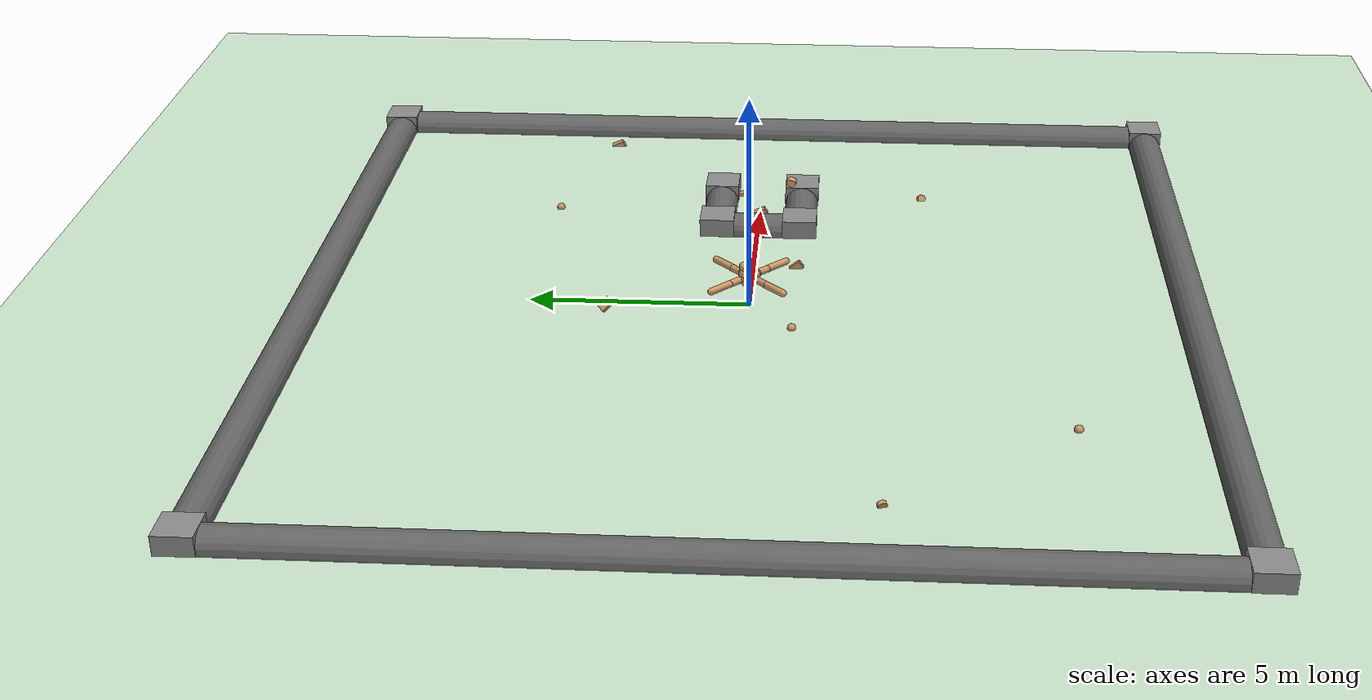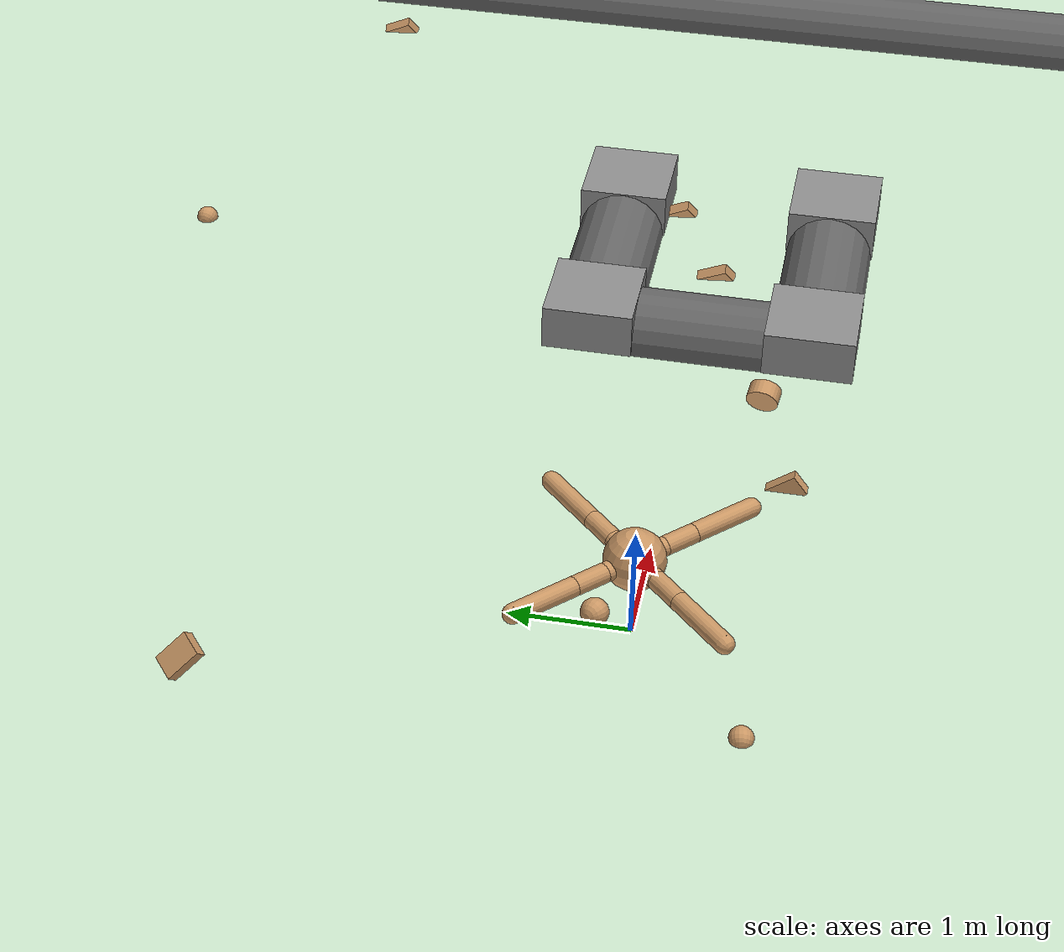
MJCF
<mujoco model="quadruped">
    <compiler angle="degree" coordinate="local" inertiafromgeom="true"/>
    <option integrator="RK4" timestep="0.01"/>
    <custom>
        <numeric data="0.0 0.0 0.55 1.0 0.0 0.0 0.0 0.0 1.0 0.0 -1.0 0.0 -1.0 0.0 1.0" name="init_qpos"/>
    </custom>
    <default>
        <joint armature="1" damping="1" limited="true"/>
        <geom conaffinity="0" condim="3" density="5.0" friction="1 0.5 0.5" margin="0.01" rgba="0.8 0.6 0.4 1"/>

        <default class="object1">
            <geom type="capsule" material="object1" size="0.1 0.05"/>
        </default>

        <default class="object2">
            <geom type="ellipsoid" material="object2" size="0.15 0.1 0.07"/>
        </default>

        <default class="object3">
            <geom type="box" material="object3" size="0.15 0.1 0.05"/>
        </default>

        <default class="object4">
            <geom type="cylinder" material="object4" size="0.1 0.05" condim="4" friction="1 .01 .01"/>
        </default>

        <default class="object5">
            <geom type="sphere" material="object5" size="0.1"/>
        </default>

        <default class="border">
            <geom type="capsule" size="0.4" rgba=".4 .4 .4 1"/>
        </default>

        <default class="borderpost">
            <geom type="box" size="0.41 0.41 0.41" rgba=".55 .55 .55 1"/>
        </default>
    </default>
    <asset>
        <texture builtin="gradient" height="100" rgb1="1 1 1" rgb2="0 0 0" type="skybox" width="100"/>
        <texture builtin="flat" height="1278" mark="cross" markrgb="1 1 1" name="texgeom" random="0.01" rgb1="0.8 0.6 0.4" rgb2="0.8 0.6 0.4" type="cube" width="127"/>
        <texture builtin="checker" height="100" name="texplane" rgb1="0 0 0" rgb2="0.8 0.8 0.8" type="2d" width="100"/>
        <material name="MatPlane" reflectance="0.5" shininess="1" specular="1" texrepeat="60 60" texture="texplane"/>
        <material name="geom" texture="texgeom" texuniform="true"/>

        <texture type="skybox" builtin="gradient" width="128" height="128" rgb1=".4 .6 .8" rgb2="0 0 0"/>
        <material name='humanoid' texture="texgeom" texuniform="true" rgba="1.2 1.2 0.6 1"/>
        <material name='object1' texture="texgeom" texuniform="true" rgba=".4 .9 .6 1" />
        <material name='object2' texture="texgeom" texuniform="true" rgba=".4 .6 .9 1" />
        <material name='object3' texture="texgeom" texuniform="true" rgba=".4 .9 .9 1" />
        <material name='object4' texture="texgeom" texuniform="true" rgba=".8 .6 .8 1" />
        <material name='object5' texture="texgeom" texuniform="true" rgba=".9 .1 .1 1" />
    </asset>
    <worldbody>
        <light cutoff="100" diffuse="1 1 1" dir="-0 0 -1.3" directional="true" exponent="1" pos="0 0 1.3" specular=".1 .1 .1"/>
        <geom conaffinity="1" condim="3" material="MatPlane" name="floor" pos="0 0 0" rgba="0.8 0.9 0.8 1" size="40 40 40" type="plane"/>
        <!--Arena-->
        <geom class="border" fromto="-10 10 0 10 10 0"  />
        <geom class="border" fromto="-10 -10 0 10 -10 0"  />
        <geom class="border" fromto="10 10 0 10 -10 0"  />
        <geom class="border" fromto="-10 10 0 -10 -10 0"  />
        <geom class="borderpost" pos="10 10 0"/>
        <geom class="borderpost" pos="-10 10 0"/>
        <geom class="borderpost" pos="10 -10 0"/>
        <geom class="borderpost" pos="-10 -10 0"/>

        <!--Obstacle-->
        <geom class="border" fromto="6 1 0 4 1 0" />
        <geom class="border" fromto="4 1 0 4 -1 0" />
        <geom class="border" fromto="4 -1 0 6 -1 0" />
        <geom class="borderpost" pos="6 1 0"/>
        <geom class="borderpost" pos="4 1 0"/>
        <geom class="borderpost" pos="4 -1 0"/>
        <geom class="borderpost" pos="6 -1 0"/>

        <!--Quadrupede-->
        <body name="torso" pos="0 0 0.75">
            <camera name="track" mode="trackcom" pos="0 -3 0.3" xyaxes="1 0 0 0 0 1"/>
            <geom name="torso_geom" pos="0 0 0" size="0.25" type="sphere"/>
            <joint armature="0" damping="0" limited="false" margin="0.01" name="root" pos="0 0 0" type="free"/>
            <body name="front_left_leg" pos="0 0 0">
                <geom fromto="0.0 0.0 0.0 0.2 0.2 0.0" name="aux_1_geom" size="0.08" type="capsule"/>
                <body name="aux_1" pos="0.2 0.2 0">
                    <joint axis="0 0 1" name="hip_1" pos="0.0 0.0 0.0" range="-30 30" type="hinge"/>
                    <geom fromto="0.0 0.0 0.0 0.2 0.2 0.0" name="left_leg_geom" size="0.08" type="capsule"/>
                    <body pos="0.2 0.2 0">
                        <joint axis="-1 1 0" name="ankle_1" pos="0.0 0.0 0.0" range="30 70" type="hinge"/>
                        <geom fromto="0.0 0.0 0.0 0.4 0.4 0.0" name="left_ankle_geom" size="0.08" type="capsule"/>
                    </body>
                </body>
            </body>
            <body name="front_right_leg" pos="0 0 0">
                <geom fromto="0.0 0.0 0.0 -0.2 0.2 0.0" name="aux_2_geom" size="0.08" type="capsule"/>
                <body name="aux_2" pos="-0.2 0.2 0">
                    <joint axis="0 0 1" name="hip_2" pos="0.0 0.0 0.0" range="-30 30" type="hinge"/>
                    <geom fromto="0.0 0.0 0.0 -0.2 0.2 0.0" name="right_leg_geom" size="0.08" type="capsule"/>
                    <body pos="-0.2 0.2 0">
                        <joint axis="1 1 0" name="ankle_2" pos="0.0 0.0 0.0" range="-70 -30" type="hinge"/>
                        <geom fromto="0.0 0.0 0.0 -0.4 0.4 0.0" name="right_ankle_geom" size="0.08" type="capsule"/>
                    </body>
                </body>
            </body>
            <body name="back_leg" pos="0 0 0">
                <geom fromto="0.0 0.0 0.0 -0.2 -0.2 0.0" name="aux_3_geom" size="0.08" type="capsule"/>
                <body name="aux_3" pos="-0.2 -0.2 0">
                    <joint axis="0 0 1" name="hip_3" pos="0.0 0.0 0.0" range="-30 30" type="hinge"/>
                    <geom fromto="0.0 0.0 0.0 -0.2 -0.2 0.0" name="back_leg_geom" size="0.08" type="capsule"/>
                    <body pos="-0.2 -0.2 0">
                        <joint axis="-1 1 0" name="ankle_3" pos="0.0 0.0 0.0" range="-70 -30" type="hinge"/>
                        <geom fromto="0.0 0.0 0.0 -0.4 -0.4 0.0" name="third_ankle_geom" size="0.08" type="capsule"/>
                    </body>
                </body>
            </body>
            <body name="right_back_leg" pos="0 0 0">
                <geom fromto="0.0 0.0 0.0 0.2 -0.2 0.0" name="aux_4_geom" size="0.08" type="capsule"/>
                <body name="aux_4" pos="0.2 -0.2 0">
                    <joint axis="0 0 1" name="hip_4" pos="0.0 0.0 0.0" range="-30 30" type="hinge"/>
                    <geom fromto="0.0 0.0 0.0 0.2 -0.2 0.0" name="rightback_leg_geom" size="0.08" type="capsule"/>
                    <body pos="0.2 -0.2 0">
                        <joint axis="1 1 0" name="ankle_4" pos="0.0 0.0 0.0" range="30 70" type="hinge"/>
                        <geom fromto="0.0 0.0 0.0 0.4 -0.4 0.0" name="fourth_ankle_geom" size="0.08" type="capsule"/>
                    </body>
                </body>
            </body>
        </body>
        <!--Resources-->
        <body pos="5 0 0" quat="-0.471405 -0.471405 0.707107 0.235702">
            <freejoint/>
            <geom class="object3"/>
        </body>
        <body pos="6 0.5 0" quat="-0.471405 -0.471405 0.707107 0.235702">
            <freejoint/>
            <geom class="object3"/>
        </body>
        <body pos="4.5 -0.5 0" quat="-0.471405 -0.471405 0.707107 0.235702">
            <freejoint/>
            <geom class="object3"/>
        </body>

        <body pos="-5 -7 0" quat="-0.632456 -0.632456 0.316228 0.316228">
            <freejoint/>
            <geom class="object5"/>
        </body>
        <body pos="-8 -3 0" quat="-0.5547 -0.5547 0.5547 0.27735">
            <freejoint/>
            <geom class="object4"/>
        </body>
        <body pos="-1 -1 0" quat="-0.471405 -0.471405 0.707107 0.235702">
            <freejoint/>
            <geom class="object5"/>
        </body>
        <body pos="9 4 0" quat="-0.471405 -0.471405 0.707107 0.235702">
            <freejoint/>
            <geom class="object3"/>
        </body>

        <body pos="6 -4 0" quat="-0.755929 -0.377964 0.377964 0.377964">
            <freejoint/>
            <geom class="object4"/>
        </body>
        <body pos="2 -1 0" quat="-0.632456 -0.316228 0.632456 0.316228">
            <freejoint/>
            <geom class="object3"/>
        </body>
        <body pos="5 5 0" quat="-0.516398 -0.258199 0.774597 0.258199">
            <freejoint/>
            <geom class="object5"/>
        </body>
        <body pos="-2 -1 4" quat="-0.516398 -0.258199 0.774597 0.258199">
            <freejoint/>
            <geom class="object4"/>
        </body>

        <body pos="-2 3 1" quat="-0.816497 0 0.408248 0.408248">
            <freejoint/>
            <geom class="object3"/>
        </body>
        <body pos="-2 0 2" quat="-0.666667 0 0.666667 0.333333">
            <freejoint/>
            <geom class="object5"/>
        </body>
    </worldbody>
    <actuator>
        <motor ctrllimited="true" ctrlrange="-1.0 1.0" joint="hip_4" gear="150"/>
        <motor ctrllimited="true" ctrlrange="-1.0 1.0" joint="ankle_4" gear="150"/>
        <motor ctrllimited="true" ctrlrange="-1.0 1.0" joint="hip_1" gear="150"/>
        <motor ctrllimited="true" ctrlrange="-1.0 1.0" joint="ankle_1" gear="150"/>
        <motor ctrllimited="true" ctrlrange="-1.0 1.0" joint="hip_2" gear="150"/>
        <motor ctrllimited="true" ctrlrange="-1.0 1.0" joint="ankle_2" gear="150"/>
        <motor ctrllimited="true" ctrlrange="-1.0 1.0" joint="hip_3" gear="150"/>
        <motor ctrllimited="true" ctrlrange="-1.0 1.0" joint="ankle_3" gear="150"/>
    </actuator>
</mujoco>
